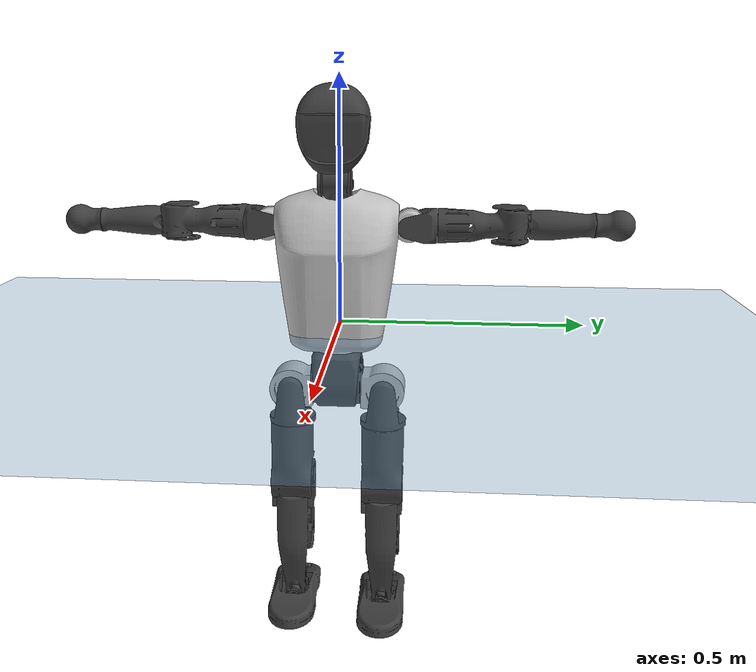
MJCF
<mujoco model="T1">
  <compiler angle="radian" assetdir="assets" balanceinertia="true" inertiafromgeom="false"/>

  <option timestep="0.005" density="1.2" viscosity="2e-05"/>

  <size nkey="1"/>

  <visual>
    <quality shadowsize="8192"/>
    <map shadowclip="0.5"/>
  </visual>

  <default>
    <default class="/">
      <joint armature="0.01" damping="0.01" frictionloss="0.1"/>
      <geom contype="0" conaffinity="0" group="1" solref="-1000 -80"/>
      <site size="0.01 0.005 0.005" group="5"/>
      <general forcelimited="true" biastype="affine" gainprm="25" biasprm="0 -25 -0.6"/>
      <default class="t1">
        <geom rgba="0.25 0.25 0.25 1"/>
        <default class="visual">
          <geom type="mesh" group="2"/>
        </default>
        <default class="collision">
          <geom group="3"/>
        </default>
        <default class="foot">
          <geom size="0.1115 0.05 0.015" type="box" condim="6" group="4" priority="1" solimp="0.015 1 0.015"/>
        </default>
        <default class="reward_collision_sphere">
          <geom group="5" rgba="1 0 0 1"/>
        </default>
      </default>
    </default>
  </default>

  <asset>
    <texture type="skybox" colorspace="auto" name="//unnamed_texture_0" builtin="gradient" rgb1="0.95 0.95 0.95" rgb2="0.95 0.95 0.95" width="100" height="600"/>
    <texture type="2d" colorspace="auto" name="texplane" builtin="checker" rgb1="0.345 0.575 0.748" rgb2="0.345 0.575 0.748" markrgb="1 1 1" width="512" height="512"/>
    <material name="MatPlane" class="/" texture="texplane" texuniform="true" texrepeat="2 2" specular="0.9"/>
    <mesh name="Trunk" class="/" file="Trunk.stl"/>
    <mesh name="H1" class="/" file="H1.stl"/>
    <mesh name="H2" class="/" file="H2.stl"/>
    <mesh name="AL1" class="/" file="AL1.stl"/>
    <mesh name="AL2" class="/" file="AL2.stl"/>
    <mesh name="AL3" class="/" file="AL3.stl"/>
    <mesh name="left_hand_link" class="/" file="left_hand_link.stl"/>
    <mesh name="AR1" class="/" file="AR1.stl"/>
    <mesh name="AR2" class="/" file="AR2.stl"/>
    <mesh name="AR3" class="/" file="AR3.stl"/>
    <mesh name="right_hand_link" class="/" file="right_hand_link.stl"/>
    <mesh name="Waist" class="/" file="Waist.stl"/>
    <mesh name="Hip_Pitch_Left" class="/" file="Hip_Pitch_Left.stl"/>
    <mesh name="Hip_Roll_Left" class="/" file="Hip_Roll_Left.stl"/>
    <mesh name="Hip_Yaw_Left" class="/" file="Hip_Yaw_Left.stl"/>
    <mesh name="Shank_Left" class="/" file="Shank_Left.stl"/>
    <mesh name="Ankle_Cross_Left" class="/" file="Ankle_Cross_Left.stl"/>
    <mesh name="left_foot_link" class="/" file="left_foot_link.stl"/>
    <mesh name="Hip_Pitch_Right" class="/" file="Hip_Pitch_Right.stl"/>
    <mesh name="Hip_Roll_Right" class="/" file="Hip_Roll_Right.stl"/>
    <mesh name="Hip_Yaw_Right" class="/" file="Hip_Yaw_Right.stl"/>
    <mesh name="Shank_Right" class="/" file="Shank_Right.stl"/>
    <mesh name="Ankle_Cross_Right" class="/" file="Ankle_Cross_Right.stl"/>
    <mesh name="right_foot_link" class="/" file="right_foot_link.stl"/>
  </asset>

  <worldbody>
    <geom name="floor" class="/" size="100 100 0.125" type="plane" group="0" material="MatPlane"/>
    <light name="toplight_shadow" class="/" pos="0 0 5" dir="0.0990148 0.0990148 -0.990148" type="directional" ambient="0.04 0.04 0.04" diffuse="0.55 0.55 0.55" specular="0.12 0.12 0.12"/>
    <light name="toplight_fill" class="/" pos="0 0 5" dir="0.0990148 0.0990148 -0.990148" type="directional" castshadow="false" ambient="0.04 0.04 0.04" diffuse="0.3 0.3 0.3" specular="0.08 0.08 0.08"/>
    <body name="trunk" childclass="t1" pos="-0.000417828 6.46221e-05 0.00230332" quat="1 -7.7064e-05 0.000157668 8.3553e-05">
      <inertial pos="0.0442656 -0.000447766 0.100889" quat="0.999969 0.00209953 -0.00763575 -0.000176254" mass="7.63884" diaginertia="0.0292993 0.0411798 0.0415836"/>
      <joint name="//unnamed_joint_0" type="free" armature="0" damping="0" frictionloss="0"/>
      <geom name="//unnamed_geom_1" class="visual" rgba="0.76 0.76 0.76 1" mesh="Trunk"/>
      <geom name="//unnamed_geom_2" class="collision" size="0.0659753 0.0879671 0.131951" pos="0.0480908 0 0.114319" type="box"/>
      <geom name="//unnamed_geom_3" class="reward_collision_sphere" size="0.101162" pos="0.0480908 0 0.0952654"/>
      <geom name="//unnamed_geom_4" class="reward_collision_sphere" size="0.0131951" pos="0.0480908 0.0752118 0"/>
      <geom name="//unnamed_geom_5" class="reward_collision_sphere" size="0.0131951" pos="0.0480908 -0.0752118 0"/>
      <geom name="//unnamed_geom_6" class="reward_collision_sphere" size="0.0131951" pos="0.0480908 0.0946784 0.171478"/>
      <geom name="//unnamed_geom_7" class="reward_collision_sphere" size="0.0131951" pos="0.0480908 -0.0946784 0.171478"/>
      <site name="imu" pos="0.0131805 -0.0130034 -0.000517605" size="0.00879671"/>
      <camera name="track" pos="0 -1.76969 0" quat="0.707107 0.707107 0 0" mode="trackcom"/>
      <camera name="ego_camera" pos="0.0977847 0 0.400115" quat="-0.5 -0.5 0.5 0.5"/>
      <body name="H1" pos="0.0492781 -0.00159503 0.231542" quat="1 -0.000263366 -0.000252678 -0.000123685">
        <inertial pos="-0.000439755 -0.000396432 0.0557479" quat="0.763379 -0.017526 0.00165443 0.64571" mass="0.304451" diaginertia="8.30281e-05 0.000121154 0.000121687"/>
        <joint name="AAHead_yaw" pos="0 0 0" axis="0.000187944 6.10639e-05 1" stiffness="0.0121889" range="-1.5737 1.59607" armature="0.00840248" damping="0.00498882" frictionloss="0.0922155"/>
        <geom name="//unnamed_geom_8" class="visual" mesh="H1"/>
        <body name="H2" pos="-0.000289365 -0.00278919 0.0593008" quat="1 7.56203e-05 -0.000183941 5.95562e-06">
          <inertial pos="0.00815797 0.00348356 0.0953153" quat="0.988778 0.106016 -0.0733637 -0.0754718" mass="0.446726" diaginertia="0.000674472 0.00106079 0.00137496"/>
          <joint name="Head_pitch" pos="0 0 0" axis="-0.00190066 -0.999988 -0.00462068" stiffness="0.000704986" range="-1.21579 0.382296" armature="0.00769898" damping="0.00113771" frictionloss="0.0888918"/>
          <geom name="//unnamed_geom_9" class="visual" mesh="H2"/>
          <geom name="//unnamed_geom_10" class="collision" size="0.0703737" pos="0.00801514 0 0.104792"/>
          <geom name="//unnamed_geom_11" class="reward_collision_sphere" size="0.0791704" pos="0.0160303 0 0.0952654"/>
        </body>
      </body>
      <body name="AL1" pos="0.0462572 0.0953585 0.207804" quat="1 3.17169e-05 0.00035991 7.61126e-06">
        <inertial pos="-0.000516559 0.039917 0.0025836" quat="0.506457 0.493316 -0.503809 0.496304" mass="0.3668" diaginertia="0.000458985 0.000703714 0.000230446"/>
        <joint name="Left_Shoulder_Pitch" pos="0 0 0" axis="0.0044208 0.999983 -0.00380719" range="-3.36182 1.18694" armature="0.00832473" damping="0.0058628" frictionloss="0.0887551"/>
        <geom name="//unnamed_geom_12" class="visual" rgba="0.76 0.76 0.76 1" mesh="AL1"/>
        <body name="AL2" pos="0.000313443 0.0453087 -0.00130094" quat="0.999999 0.00130231 0.000320441 0.000505169">
          <inertial pos="0.0029826 0.0328085 -0.00231192" quat="0.48474 0.51317 -0.487682 0.513664" mass="0.116167" diaginertia="0.000136983 0.0001991 0.000145036"/>
          <joint name="Left_Shoulder_Roll" pos="0 0 0" axis="-0.999996 -0.00283174 -0.000364156" range="-1.60445 1.75326" armature="0.00905006" damping="0" frictionloss="0.0900542"/>
          <geom name="//unnamed_geom_13" class="visual" mesh="AL2"/>
          <body name="AL3" pos="0.00243647 0.0568525 0.00113241" quat="0.999999 0.000405489 0.000288115 -0.00105755">
            <inertial pos="-0.000990149 0.0755706 0.000125185" quat="0.700864 0.713234 -0.00333805 0.00869597" mass="0.717954" diaginertia="0.00438747 0.00721417 0.00050042"/>
            <joint name="Left_Elbow_Pitch" pos="0 0 0" axis="0.0026536 -0.999996 -0.000644246" range="-2.27986 2.27897" armature="0.00906862" damping="0.0118231" frictionloss="0.0897353"/>
            <geom name="//unnamed_geom_14" class="visual" mesh="AL3"/>
            <geom name="//unnamed_geom_15" class="collision" size="0.0263901 0.0659753" pos="0 0.0442422 0" quat="0.707105 0.707108 0 0" type="cylinder"/>
            <geom name="//unnamed_geom_16" class="reward_collision_sphere" size="0.0316682"/>
            <body name="left_hand_link" pos="0.000268639 0.133197 0.00269123" quat="0.999999 -0.000160781 0.00129387 -0.000364996">
              <inertial pos="-0.000286378 0.0968219 -0.00208645" quat="0.714112 0.699966 -0.00856825 0.00417656" mass="0.214751" diaginertia="0.00263374 0.00429844 0.000162297"/>
              <joint name="Left_Elbow_Yaw" pos="0 0 0" axis="0.00781892 0.0133556 0.99988" range="-2.44206 0.0426018" armature="0.00896506" damping="0.00378512" frictionloss="0.0995431"/>
              <geom name="//unnamed_geom_17" class="visual" mesh="left_hand_link"/>
              <geom name="//unnamed_geom_18" class="collision" size="0.0263901 0.0769712" pos="0 0.11503 0" quat="0.707105 0.707108 0 0" type="cylinder"/>
              <geom name="//unnamed_geom_19" class="reward_collision_sphere" size="0.0439835"/>
              <geom name="//unnamed_geom_20" class="reward_collision_sphere" size="0.0307885" pos="0 0.0973329 0"/>
              <geom name="//unnamed_geom_21" class="reward_collision_sphere" size="0.0307885" pos="0 0.190242 0"/>
            </body>
          </body>
        </body>
      </body>
      <body name="AR1" pos="0.0432707 -0.0909558 0.208063" quat="1 0.000166476 0.000842082 -0.000260276">
        <inertial pos="-0.000854531 -0.0390093 -0.000940118" quat="0.504883 0.496019 -0.504083 0.494932" mass="0.363922" diaginertia="0.000456538 0.000712983 0.000228808"/>
        <joint name="Right_Shoulder_Pitch" pos="0 0 0" axis="0.00295051 -0.999995 -0.00112011" stiffness="0.0164693" range="-1.174 3.32698" armature="0.00854937" damping="0.0203174" frictionloss="0.0892213"/>
        <geom name="//unnamed_geom_22" class="visual" rgba="0.76 0.76 0.76 1" mesh="AR1"/>
        <body name="AR2" pos="-0.00286176 -0.0384386 0.000614697" quat="1 7.39531e-07 0.00047223 1.84589e-05">
          <inertial pos="0.00159774 -0.0338044 -0.00154609" quat="0.513782 0.483476 -0.512023 0.490012" mass="0.107456" diaginertia="0.00012782 0.000180606 0.000139786"/>
          <joint name="Right_Shoulder_Roll" pos="0 0 0" axis="-0.999983 0.0052526 0.00241171" stiffness="0.00917868" range="-1.72576 1.51805" armature="0.0090206" damping="0.00510018" frictionloss="0.0763052"/>
          <geom name="//unnamed_geom_23" class="visual" mesh="AR2"/>
          <body name="AR3" pos="-0.000891933 -0.0508999 0.00233417" quat="1 0.000167912 -3.19283e-05 8.81304e-05">
            <inertial pos="-0.00023111 -0.0744916 -0.00064624" quat="0.700444 0.713668 0.000991622 -0.00749291" mass="0.685661" diaginertia="0.00420036 0.00704639 0.000491526"/>
            <joint name="Right_Elbow_Pitch" pos="0 0 0" axis="-0.00125305 0.999999 -0.000570001" stiffness="0.0120058" range="-2.26927 2.2681" armature="0.00919101" damping="0.0132022" frictionloss="0.0997318"/>
            <geom name="//unnamed_geom_24" class="visual" mesh="AR3"/>
            <geom name="//unnamed_geom_25" class="collision" size="0.0263901 0.0659753" pos="0 -0.0442422 0" quat="0.707105 0.707108 0 0" type="cylinder"/>
            <geom name="//unnamed_geom_26" class="reward_collision_sphere" size="0.0316682"/>
            <body name="right_hand_link" pos="-0.00283721 -0.129085 -0.00130545" quat="1 -0.000398892 -8.54127e-06 0.000340225">
              <inertial pos="-0.00116071 -0.0972216 0.00338191" quat="0.714736 0.699374 -0.00481308 0.00249175" mass="0.21282" diaginertia="0.00255831 0.00428588 0.000162999"/>
              <joint name="Right_Elbow_Yaw" pos="0 0 0" axis="-0.000669379 -0.00203705 0.999998" stiffness="0.00305797" range="-0.0478924 2.41777" armature="0.0100905" damping="0.00830189" frictionloss="0.0882975"/>
              <geom name="//unnamed_geom_27" class="visual" mesh="right_hand_link"/>
              <geom name="//unnamed_geom_28" class="collision" size="0.0263901 0.0769712" pos="0 -0.11503 0" quat="0.707105 0.707108 0 0" type="cylinder"/>
              <geom name="//unnamed_geom_29" class="reward_collision_sphere" size="0.0439835"/>
              <geom name="//unnamed_geom_30" class="reward_collision_sphere" size="0.0307885" pos="0 -0.0973329 0"/>
              <geom name="//unnamed_geom_31" class="reward_collision_sphere" size="0.0307885" pos="0 -0.190242 0"/>
            </body>
          </body>
        </body>
      </body>
      <body name="Waist" pos="0.0503551 -0.00146174 -0.112172" quat="1 6.93614e-05 -2.92553e-05 9.1062e-05">
        <inertial pos="0.00401984 -0.000929548 0.00624758" quat="0.983511 0.000747161 -0.180828 0.00254827" mass="1.74072" diaginertia="0.00172618 0.00269743 0.00357187"/>
        <joint name="Waist" pos="0 0 0" axis="-0.00407055 2.86892e-05 0.999992" range="-1.5182 1.57021" armature="0.00779171" damping="0.0113349" frictionloss="0.0894306"/>
        <geom name="//unnamed_geom_32" class="visual" mesh="Waist"/>
        <body name="Hip_Pitch_Left" pos="-0.00185181 0.0956352 -0.000778799" quat="0.999999 -0.000568973 -0.000621156 -0.000906458">
          <inertial pos="-0.000211936 -0.00401014 -0.0170933" quat="0.975202 0.220826 0.0146175 0.00166365" mass="0.691005" diaginertia="0.000589081 0.000801704 0.000963387"/>
          <joint name="Left_Hip_Pitch" pos="0 0 0" axis="-0.00131102 0.999999 -0.00111409" stiffness="0.00825747" range="-1.79541 1.6043" armature="0.00884945" damping="0.0117274" frictionloss="0.0881628"/>
          <geom name="//unnamed_geom_33" class="visual" rgba="0.76 0.76 0.76 1" mesh="Hip_Pitch_Left"/>
          <body name="Hip_Roll_Left" pos="0.000461903 3.12486e-05 -0.0205943" quat="0.999999 0.000246386 0.000818397 -0.000602346">
            <inertial pos="0.000958802 -5.41433e-05 -0.0502362" quat="0.705816 -0.00642176 -0.00449996 0.708351" mass="0.264158" diaginertia="0.000578315 0.000801482 0.000393621"/>
            <joint name="Left_Hip_Roll" pos="0 0 0" axis="-0.999999 -0.00042832 -0.00147016" range="-1.58689 0.21819" armature="0.00878032" damping="0.0133405" frictionloss="0.0981458"/>
            <geom name="//unnamed_geom_34" class="visual" mesh="Hip_Roll_Left"/>
            <geom name="//unnamed_geom_35" class="reward_collision_sphere" size="0.0483819"/>
            <body name="Hip_Yaw_Left" pos="0.00117134 -0.000679852 -0.0799615" quat="1 0.000583031 -7.04006e-05 0.000239801">
              <inertial pos="-0.00431083 -0.00091706 -0.0860505" quat="0.69675 -0.0454579 -0.0250378 0.715434" mass="1.46409" diaginertia="0.00842489 0.0132628 0.0020524"/>
              <joint name="Left_Hip_Yaw" pos="0 0 0" axis="-0.00274098 0.0102474 -0.999944" range="-0.997417 0.985601" armature="0.00875784" damping="0.0147631" frictionloss="0.0882617"/>
              <geom name="//unnamed_geom_36" class="visual" mesh="Hip_Yaw_Left"/>
              <geom name="//unnamed_geom_37" class="collision" size="0.0439835 0.0703737" type="cylinder"/>
              <body name="Shank_Left" pos="-0.0110092 0.000304278 -0.128896" quat="1 0.000156321 0.000207102 -0.000344141">
                <inertial pos="-0.0054226 0.000169067 -0.118361" quat="0.997567 0.00624546 -0.0331251 0.0610266" mass="1.18507" diaginertia="0.0114417 0.0192702 0.00147915"/>
                <joint name="Left_Knee_Pitch" pos="0 0 0" axis="-0.000533008 1 -0.000527896" range="-0.00630348 2.3351" armature="0.00849348" damping="0.013343" frictionloss="0.0992026"/>
                <geom name="//unnamed_geom_38" class="visual" mesh="Shank_Left"/>
                <geom name="//unnamed_geom_39" class="collision" size="0.0439835 0.0659753" pos="0 0 -0.114319" type="cylinder"/>
                <geom name="//unnamed_geom_40" class="reward_collision_sphere" size="0.0571786"/>
                <body name="Ankle_Cross_Left" pos="-0.00124973 -0.000494974 -0.268451" quat="1 0.000519647 -0.000210139 -0.000216757">
                  <inertial pos="-0.00215323 0.000831227 -0.0102866" quat="0.443753 0.549186 0.551681 0.443989" mass="0.0507644" diaginertia="1.02276e-05 1.40613e-05 9.05698e-06"/>
                  <joint name="Left_Ankle_Pitch" pos="0 0 0" axis="-0.00243549 0.999987 -0.00455924" range="-0.919984 0.373002" armature="0.00843053" damping="0.00813826" frictionloss="0.0993926"/>
                  <geom name="//unnamed_geom_41" class="visual" mesh="Ankle_Cross_Left"/>
                  <body name="left_foot_link" pos="0.001415 2.59403e-05 -0.0149661" quat="1 0.000134286 -0.000110008 8.95007e-05">
                    <inertial pos="0.000319671 -0.00264969 -0.00967055" quat="-0.00133014 0.622636 -0.000469724 0.78251" mass="0.463622" diaginertia="0.000913043 0.0012959 0.00170149"/>
                    <joint name="Left_Ankle_Roll" pos="0 0 0" axis="-1 -0.000364873 -0.000271214" range="-0.471974 0.443292" armature="0.00890477" damping="0.012132" frictionloss="0.0858755"/>
                    <geom name="//unnamed_geom_42" class="visual" mesh="left_foot_link"/>
                    <geom name="left_foot" class="foot" size="0.100514 0.0461505 0.0140254" pos="0.00801514 0 -0.0142898"/>
                    <geom name="//unnamed_geom_44" class="reward_collision_sphere" size="0.0457429" pos="0.00801514 0 -0.0142898"/>
                    <geom name="//unnamed_geom_45" class="reward_collision_sphere" size="0.0263901" pos="0.0761438 -0.0203514 -0.0142898"/>
                    <geom name="//unnamed_geom_46" class="reward_collision_sphere" size="0.0263901" pos="-0.056106 -0.0203514 -0.0142898"/>
                    <site name="left_foot" class="foot" pos="0.00801514 0 -0.0142898" size="0.00879671"/>
                  </body>
                </body>
              </body>
            </body>
          </body>
        </body>
        <body name="Hip_Pitch_Right" pos="0.00148475 -0.0937986 0.00188471" quat="1 -0.000527616 -0.000505132 0.000529206">
          <inertial pos="0.0004133 0.00592716 -0.014273" quat="0.971438 -0.236158 0.0231558 0.000905493" mass="0.687511" diaginertia="0.000590233 0.000784226 0.000996533"/>
          <joint name="Right_Hip_Pitch" pos="0 0 0" axis="-0.00134579 -0.999946 0.0102756" range="-1.57422 1.80889" armature="0.00980991" damping="0.0126093" frictionloss="0.0925625"/>
          <geom name="//unnamed_geom_47" class="visual" rgba="0.76 0.76 0.76 1" mesh="Hip_Pitch_Right"/>
          <body name="Hip_Roll_Right" pos="0.00139799 -0.000322439 -0.0177011" quat="0.999999 -0.000185709 0.00130953 -0.000437668">
            <inertial pos="0.00392347 -0.000708057 -0.0528258" quat="0.711611 -0.000984003 0.00238794 0.702569" mass="0.255499" diaginertia="0.000548373 0.00079142 0.00039347"/>
            <joint name="Right_Hip_Roll" pos="0 0 0" axis="-0.999983 0.00412111 0.00410589" stiffness="0.0050018" range="-0.205267 1.61948" armature="0.0087423" damping="0.00332942" frictionloss="0.0885245"/>
            <geom name="//unnamed_geom_48" class="visual" mesh="Hip_Roll_Right"/>
            <geom name="//unnamed_geom_49" class="reward_collision_sphere" size="0.0483819"/>
            <body name="Hip_Yaw_Right" pos="0.000635285 -0.00205941 -0.0774014" quat="0.999999 0.000968706 0.000375907 -0.00112459">
              <inertial pos="-0.00374016 0.000692128 -0.0857251" quat="0.710507 -0.0371716 -0.0368609 0.70174" mass="1.51976" diaginertia="0.0090929 0.0146479 0.0021187"/>
              <joint name="Right_Hip_Yaw" pos="0 0 0" axis="-0.00123327 -0.00280958 -0.999995" range="-1.01727 0.955462" armature="0.00886785" damping="0.0105171" frictionloss="0.0763034"/>
              <geom name="//unnamed_geom_50" class="visual" mesh="Hip_Yaw_Right"/>
              <geom name="//unnamed_geom_51" class="collision" size="0.0439835 0.0703737" type="cylinder"/>
              <body name="Shank_Right" pos="-0.0135242 0.00129931 -0.128359" quat="0.999999 -0.000860707 -0.000871969 2.23292e-05">
                <inertial pos="-0.00223055 0.000796901 -0.11563" quat="0.999185 0.000605731 -0.0256953 -0.0311349" mass="1.27222" diaginertia="0.0116965 0.0185472 0.00151568"/>
                <joint name="Right_Knee_Pitch" pos="0 0 0" axis="-0.00186594 -0.999994 0.00302223" stiffness="0.00399826" range="-2.31977 0.0020255" armature="0.00876892" damping="0.0150468" frictionloss="0.0886898"/>
                <geom name="//unnamed_geom_52" class="visual" mesh="Shank_Right"/>
                <geom name="//unnamed_geom_53" class="collision" size="0.0439835 0.0659753" pos="0 0 -0.114319" type="cylinder"/>
                <geom name="//unnamed_geom_54" class="reward_collision_sphere" size="0.0571786"/>
                <body name="Ankle_Cross_Right" pos="0.000342135 -0.000177755 -0.268418" quat="0.999999 0.000931443 0.000587409 0.000773112">
                  <inertial pos="-0.00292163 -0.000195499 -0.00704792" quat="0.44283 0.551322 0.551021 0.443081" mass="0.0468962" diaginertia="9.367e-06 1.36161e-05 8.7496e-06"/>
                  <joint name="Right_Ankle_Pitch" pos="0 0 0" axis="-0.0115359 -0.999904 -0.0077306" range="-0.343382 0.831607" armature="0.00982019" damping="0" frictionloss="0.0764489"/>
                  <geom name="//unnamed_geom_55" class="visual" mesh="Ankle_Cross_Right"/>
                  <body name="right_foot_link" pos="0.00231907 -0.00230107 -0.0100215" quat="1 0.000121821 -5.04998e-05 -0.000455354">
                    <inertial pos="-0.00105967 -0.000803087 -0.011179" quat="-0.000806574 0.623919 0.00062147 0.781488" mass="0.480069" diaginertia="0.000871447 0.00128323 0.00170573"/>
                    <joint name="Right_Ankle_Roll" pos="0 0 0" axis="-0.999914 0.00682655 -0.011167" range="-0.386217 0.450112" armature="0.00777588" damping="0.00690333" frictionloss="0.0871433"/>
                    <geom name="//unnamed_geom_56" class="visual" mesh="right_foot_link"/>
                    <geom name="right_foot" class="foot" size="0.0935671 0.0446651 0.0135996" pos="0.00801514 0 -0.0142898"/>
                    <geom name="//unnamed_geom_58" class="reward_collision_sphere" size="0.0351868"/>
                    <geom name="//unnamed_geom_59" class="reward_collision_sphere" size="0.0263901" pos="0.00801514 0 -0.0142898"/>
                    <geom name="//unnamed_geom_60" class="reward_collision_sphere" size="0.0263901" pos="0.0761438 0.0203514 -0.0142898"/>
                    <geom name="//unnamed_geom_61" class="reward_collision_sphere" size="0.0263901" pos="-0.056106 0.0203514 -0.0142898"/>
                    <site name="right_foot" class="foot" pos="0.00801514 0 -0.0142898" size="0.00879671"/>
                  </body>
                </body>
              </body>
            </body>
          </body>
        </body>
      </body>
    </body>
  </worldbody>

  <contact>
    <pair class="/" geom1="floor" geom2="left_foot" name="//unnamed_contact_0"/>
    <pair class="/" geom1="floor" geom2="right_foot" name="//unnamed_contact_1"/>
  </contact>

  <actuator>
    <general name="AAHead_yaw" class="/" joint="AAHead_yaw" forcerange="-6.05749 6.05749" gainprm="23.4408" biasprm="0 -23.4408 -0.516402"/>
    <general name="Head_pitch" class="/" joint="Head_pitch" forcerange="-6.01322 6.01322" gainprm="23.4408" biasprm="0 -23.4408 -0.516402"/>
    <general name="Left_Shoulder_Pitch" class="/" joint="Left_Shoulder_Pitch" forcerange="-15.4554 15.4554" gainprm="23.4408" biasprm="0 -23.4408 -0.516402"/>
    <general name="Left_Shoulder_Roll" class="/" joint="Left_Shoulder_Roll" forcerange="-15.84 15.84" gainprm="23.4408" biasprm="0 -23.4408 -0.516402"/>
    <general name="Left_Elbow_Pitch" class="/" joint="Left_Elbow_Pitch" forcerange="-17.3784 17.3784" gainprm="23.4408" biasprm="0 -23.4408 -0.516402"/>
    <general name="Left_Elbow_Yaw" class="/" joint="Left_Elbow_Yaw" forcerange="-16.4983 16.4983" gainprm="23.4408" biasprm="0 -23.4408 -0.516402"/>
    <general name="Right_Shoulder_Pitch" class="/" joint="Right_Shoulder_Pitch" forcerange="-15.9663 15.9663" gainprm="23.4408" biasprm="0 -23.4408 -0.516402"/>
    <general name="Right_Shoulder_Roll" class="/" joint="Right_Shoulder_Roll" forcerange="-15.6887 15.6887" gainprm="23.4408" biasprm="0 -23.4408 -0.516402"/>
    <general name="Right_Elbow_Pitch" class="/" joint="Right_Elbow_Pitch" forcerange="-16.3615 16.3615" gainprm="23.4408" biasprm="0 -23.4408 -0.516402"/>
    <general name="Right_Elbow_Yaw" class="/" joint="Right_Elbow_Yaw" forcerange="-17.2521 17.2521" gainprm="23.4408" biasprm="0 -23.4408 -0.516402"/>
    <general name="Waist" class="/" joint="Waist" forcerange="-26.9387 26.9387" gainprm="23.4408" biasprm="0 -23.4408 -0.516402"/>
    <general name="Left_Hip_Pitch" class="/" joint="Left_Hip_Pitch" forcerange="-35.5974 35.5974" gainprm="23.4408" biasprm="0 -23.4408 -0.516402"/>
    <general name="Left_Hip_Roll" class="/" joint="Left_Hip_Roll" forcerange="-25.2884 25.2884" gainprm="23.4408" biasprm="0 -23.4408 -0.516402"/>
    <general name="Left_Hip_Yaw" class="/" joint="Left_Hip_Yaw" forcerange="-25.7414 25.7414" gainprm="23.4408" biasprm="0 -23.4408 -0.516402"/>
    <general name="Left_Knee_Pitch" class="/" joint="Left_Knee_Pitch" forcerange="-57.3523 57.3523" gainprm="23.4408" biasprm="0 -23.4408 -0.516402"/>
    <general name="Left_Ankle_Pitch" class="/" joint="Left_Ankle_Pitch" forcerange="-16.9365 16.9365" gainprm="23.4408" biasprm="0 -23.4408 -0.516402"/>
    <general name="Left_Ankle_Roll" class="/" joint="Left_Ankle_Roll" forcerange="-13.3927 13.3927" gainprm="23.4408" biasprm="0 -23.4408 -0.516402"/>
    <general name="Right_Hip_Pitch" class="/" joint="Right_Hip_Pitch" forcerange="-43.6051 43.6051" gainprm="23.4408" biasprm="0 -23.4408 -0.516402"/>
    <general name="Right_Hip_Roll" class="/" joint="Right_Hip_Roll" forcerange="-25.2381 25.2381" gainprm="23.4408" biasprm="0 -23.4408 -0.516402"/>
    <general name="Right_Hip_Yaw" class="/" joint="Right_Hip_Yaw" forcerange="-25.6929 25.6929" gainprm="23.4408" biasprm="0 -23.4408 -0.516402"/>
    <general name="Right_Knee_Pitch" class="/" joint="Right_Knee_Pitch" forcerange="-55.6116 55.6116" gainprm="23.4408" biasprm="0 -23.4408 -0.516402"/>
    <general name="Right_Ankle_Pitch" class="/" joint="Right_Ankle_Pitch" forcerange="-17.4118 17.4118" gainprm="23.4408" biasprm="0 -23.4408 -0.516402"/>
    <general name="Right_Ankle_Roll" class="/" joint="Right_Ankle_Roll" forcerange="-11.879 11.879" gainprm="23.4408" biasprm="0 -23.4408 -0.516402"/>
  </actuator>

  <sensor>
    <gyro site="imu" name="imu_angular_velocity"/>
    <velocimeter site="imu" name="imu_linear_velocity"/>
    <framelinvel objtype="site" objname="left_foot" name="left_foot_global_linear_velocity"/>
    <framelinvel objtype="site" objname="right_foot" name="right_foot_global_linear_velocity"/>
  </sensor>

  <keyframe>
    <key name="home" qpos="0 0 0.6385 1 0 0 0 0 0 0 1.4 0 -0.4 0 -1.4 0 0.4 0 -0.4 0 0 0.8 -0.4 0 0.4 0 0 -0.8 0.4 0"/>
  </keyframe>
</mujoco>
